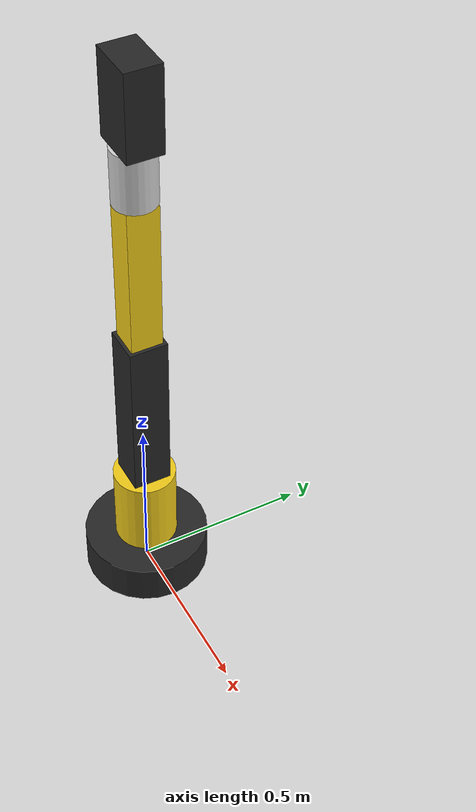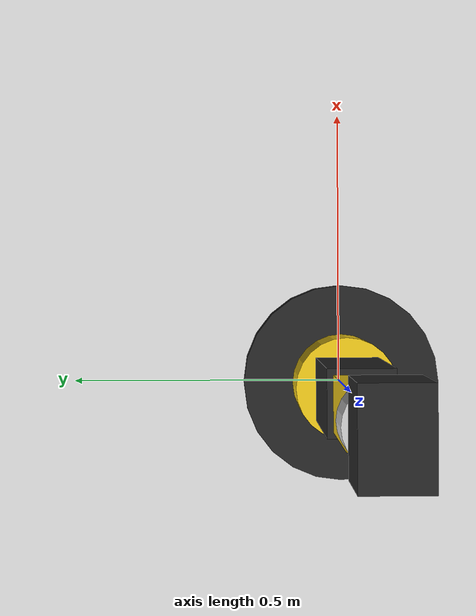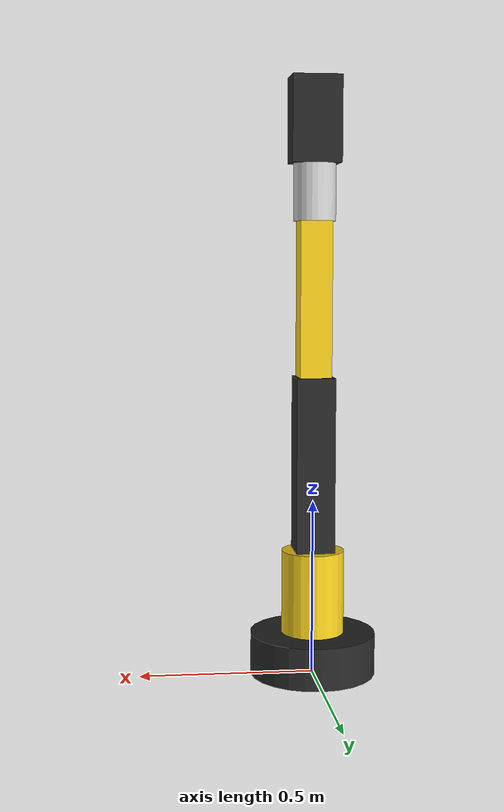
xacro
<?xml version="1.0"?>
<robot xmlns:xacro="http://www.ros.org/wiki/xacro" name="astra_arm">

  <!-- Scale factor -->
  <xacro:property name="S" value="2.0"/>

  <material name="black"><color rgba="0.15 0.15 0.15 1.0"/></material>
  <material name="yellow"><color rgba="0.95 0.80 0.10 1.0"/></material>
  <material name="silver"><color rgba="0.82 0.82 0.82 1.0"/></material>

  <link name="base_link">
    <visual>
      <origin xyz="0 0 ${0.03*S}"/>
      <geometry><cylinder radius="${0.09*S}" length="${0.06*S}"/></geometry>
      <material name="black"/>
    </visual>
    <collision>
      <origin xyz="0 0 ${0.03*S}"/>
      <geometry><cylinder radius="${0.09*S}" length="${0.06*S}"/></geometry>
    </collision>
    <inertial>
      <origin xyz="0 0 ${0.03*S}"/>
      <mass value="2.5"/>
      <inertia ixx="0.01" ixy="0" ixz="0" iyy="0.01" iyz="0" izz="0.01"/>
    </inertial>
  </link>

  <link name="shoulder_link">
    <visual>
      <origin xyz="0 0 ${0.06*S}"/>
      <geometry><cylinder radius="${0.045*S}" length="${0.12*S}"/></geometry>
      <material name="yellow"/>
    </visual>
    <collision>
      <origin xyz="0 0 ${0.06*S}"/>
      <geometry><cylinder radius="${0.045*S}" length="${0.12*S}"/></geometry>
    </collision>
    <inertial>
      <origin xyz="0 0 ${0.06*S}"/>
      <mass value="1.0"/>
      <inertia ixx="0.003" ixy="0" ixz="0" iyy="0.003" iyz="0" izz="0.003"/>
    </inertial>
  </link>

  <joint name="shoulder_joint" type="revolute">
    <parent link="base_link"/>
    <child link="shoulder_link"/>
    <origin xyz="0 0 ${0.06*S}"/>
    <axis xyz="0 0 1"/>
    <limit lower="-3.14159" upper="3.14159" effort="30" velocity="2"/>
  </joint>

  <link name="upper_arm_link">
    <visual>
      <origin xyz="0 0 ${0.125*S}"/>
      <geometry><box size="${0.055*S} ${0.055*S} ${0.25*S}"/></geometry>
      <material name="black"/>
    </visual>
    <collision>
      <origin xyz="0 0 ${0.125*S}"/>
      <geometry><box size="${0.055*S} ${0.055*S} ${0.25*S}"/></geometry>
    </collision>
    <inertial>
      <origin xyz="0 0 ${0.125*S}"/>
      <mass value="1.2"/>
      <inertia ixx="0.005" ixy="0" ixz="0" iyy="0.005" iyz="0" izz="0.005"/>
    </inertial>
  </link>

  <joint name="elbow_joint" type="revolute">
    <parent link="shoulder_link"/>
    <child link="upper_arm_link"/>
    <origin xyz="0 0 ${0.12*S}"/>
    <axis xyz="0 1 0"/>
    <limit lower="-1.57" upper="1.57" effort="25" velocity="2"/>
  </joint>

  <link name="forearm_link">
    <visual>
      <origin xyz="0 0 ${0.11*S}"/>
      <geometry><box size="${0.045*S} ${0.045*S} ${0.22*S}"/></geometry>
      <material name="yellow"/>
    </visual>
    <collision>
      <origin xyz="0 0 ${0.11*S}"/>
      <geometry><box size="${0.045*S} ${0.045*S} ${0.22*S}"/></geometry>
    </collision>
    <inertial>
      <origin xyz="0 0 ${0.11*S}"/>
      <mass value="0.8"/>
      <inertia ixx="0.003" ixy="0" ixz="0" iyy="0.003" iyz="0" izz="0.003"/>
    </inertial>
  </link>

  <joint name="wrist_joint" type="revolute">
    <parent link="upper_arm_link"/>
    <child link="forearm_link"/>
    <origin xyz="0 0 ${0.25*S}"/>
    <axis xyz="0 1 0"/>
    <limit lower="-1.57" upper="1.57" effort="20" velocity="2"/>
  </joint>

  <link name="wrist_link">
    <visual>
      <origin xyz="0 0 ${0.04*S}"/>
      <geometry><cylinder radius="${0.03*S}" length="${0.08*S}"/></geometry>
      <material name="silver"/>
    </visual>
    <collision>
      <origin xyz="0 0 ${0.04*S}"/>
      <geometry><cylinder radius="${0.03*S}" length="${0.08*S}"/></geometry>
    </collision>
    <inertial>
      <origin xyz="0 0 ${0.04*S}"/>
      <mass value="0.3"/>
      <inertia ixx="0.001" ixy="0" ixz="0" iyy="0.001" iyz="0" izz="0.001"/>
    </inertial>
  </link>

  <joint name="wrist_roll_joint" type="revolute">
    <parent link="forearm_link"/>
    <child link="wrist_link"/>
    <origin xyz="0 0 ${0.22*S}"/>
    <axis xyz="0 0 1"/>
    <limit lower="-3.14159" upper="3.14159" effort="10" velocity="2"/>
  </joint>

  <link name="gripper_link">
    <visual>
      <origin xyz="0 0 ${0.06*S}"/>
      <geometry><box size="${0.07*S} ${0.05*S} ${0.12*S}"/></geometry>
      <material name="black"/>
    </visual>
    <collision>
      <origin xyz="0 0 ${0.06*S}"/>
      <geometry><box size="${0.07*S} ${0.05*S} ${0.12*S}"/></geometry>
    </collision>
    <inertial>
      <origin xyz="0 0 ${0.06*S}"/>
      <mass value="0.4"/>
      <inertia ixx="0.0015" ixy="0" ixz="0" iyy="0.0015" iyz="0" izz="0.0015"/>
    </inertial>
  </link>

  <joint name="gripper_joint" type="fixed">
    <parent link="wrist_link"/>
    <child link="gripper_link"/>
    <origin xyz="0 0 ${0.08*S}"/>
  </joint>

</robot>
